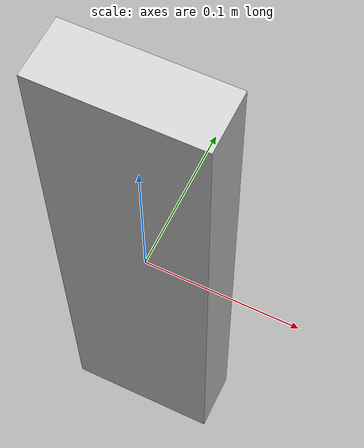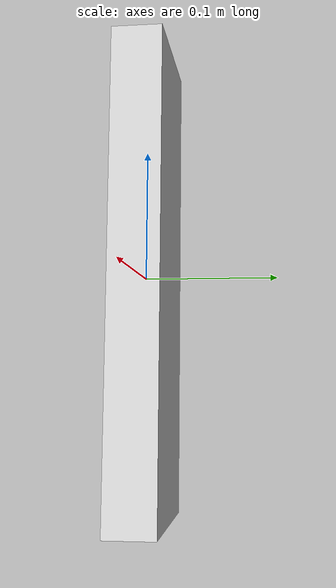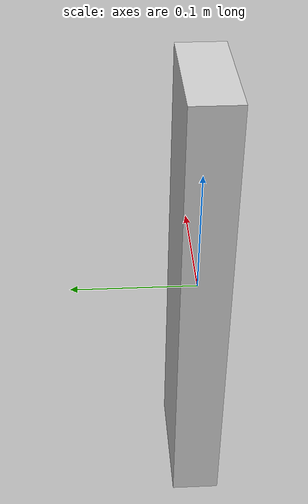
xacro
<?xml version="1.0"?>

<robot xmlns:xacro="http://www.ros.org/wiki/xacro" name = "gripper">

    <xacro:macro name="default_inertial" params="mass">
        <inertial>
            <mass value="${mass}" />
            <inertia ixx="1e-6" ixy="0.0" ixz="0.0"
                    iyy="1e-6" iyz="0.0"
                    izz="1e-6" />
            </inertial>
	</xacro:macro>

    <link name = "gripper">
        <visual>
            <geometry>
                <box size = "0.1 0.038 0.362"/>
            </geometry>
            <material name = "gray">
                <color rgba = "0.8 0.8 0.8 1"/>
            </material>
        </visual>
        <collision>
            <geometry>
                <box size = "0.1 0.038 0.362"/>
            </geometry>
        </collision>
		<xacro:default_inertial mass="3"/>
    </link>

</robot>
